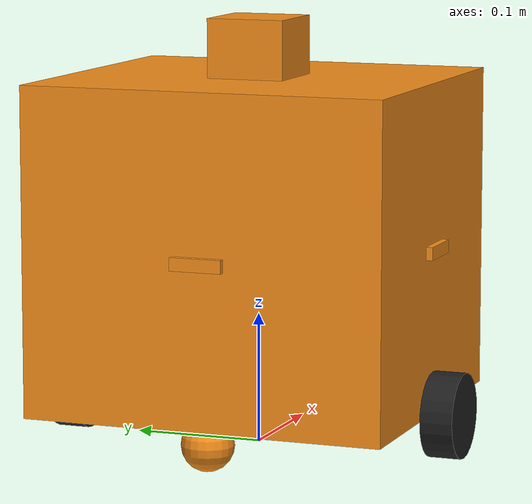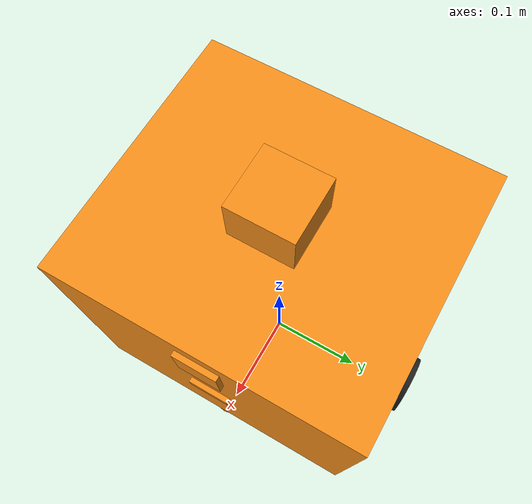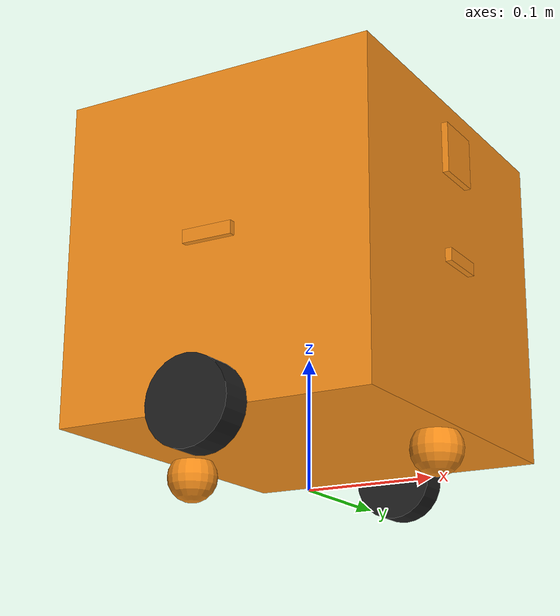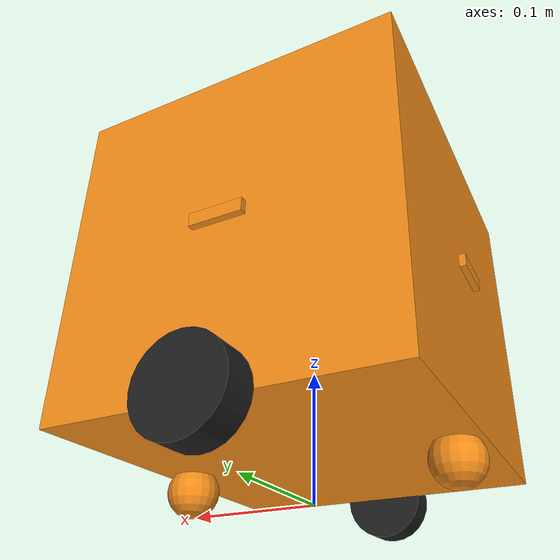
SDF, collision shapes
<sdf version='1.6'>
  <model name='piyabot'>
    <link name='base_footprint'>
      <pose frame=''>0 0 0 0 -0 0</pose>
      <inertial>
        <pose frame=''>0.00119 0 0.158357 0 -0 0</pose>
        <mass>10.5</mass>
        <inertia>
          <ixx>0.126012</ixx>
          <ixy>2.58358e-22</ixy>
          <ixz>-0.00105179</ixz>
          <iyy>0.116502</iyy>
          <iyz>1.38997e-23</iyz>
          <izz>0.108086</izz>
        </inertia>
      </inertial>
      <collision name='base_footprint_fixed_joint_lump__chassis_collision'>
        <pose frame=''>0 0 0.1575 0 -0 0</pose>
        <geometry>
          <box>
            <size>0.25 0.28 0.25</size>
          </box>
        </geometry>
        <surface>
          <contact>
            <ode/>
          </contact>
          <friction>
            <ode/>
          </friction>
        </surface>
      </collision>
      <collision name='base_footprint_fixed_joint_lump__camera_collision_1'>
        <pose frame=''>0.125 0 0.2425 0 -0 0</pose>
        <geometry>
          <box>
            <size>0.01 0.04 0.04</size>
          </box>
        </geometry>
        <surface>
          <contact>
            <ode/>
          </contact>
          <friction>
            <ode/>
          </friction>
        </surface>
      </collision>
      <collision name='base_footprint_fixed_joint_lump__caster_back_wheel_collision_2'>
        <pose frame=''>-0.105 0 0.02 0 -0 0</pose>
        <geometry>
          <sphere>
            <radius>0.02</radius>
          </sphere>
        </geometry>
        <surface>
          <contact>
            <ode/>
          </contact>
          <friction>
            <ode>
              <mu>0</mu>
              <mu2>0</mu2>
            </ode>
          </friction>
        </surface>
      </collision>
      <collision name='base_footprint_fixed_joint_lump__caster_front_wheel_collision_3'>
        <pose frame=''>0.105 0 0.02 0 -0 0</pose>
        <geometry>
          <sphere>
            <radius>0.02</radius>
          </sphere>
        </geometry>
        <surface>
          <contact>
            <ode/>
          </contact>
          <friction>
            <ode>
              <mu>0</mu>
              <mu2>0</mu2>
            </ode>
          </friction>
        </surface>
      </collision>
      <collision name='base_footprint_fixed_joint_lump__rplidar_collision_4'>
        <pose frame=''>0 0 0.2975 0 -0 0</pose>
        <geometry>
          <box>
            <size>0.06 0.06 0.06</size>
          </box>
        </geometry>
        <surface>
          <contact>
            <ode/>
          </contact>
          <friction>
            <ode/>
          </friction>
        </surface>
      </collision>
      <collision name='base_footprint_fixed_joint_lump__base_sonar_back_collision_5'>
        <pose frame=''>-0.125 0 0.1575 0 -0 -3.14159</pose>
        <geometry>
          <box>
            <size>0.01 0.04 0.01</size>
          </box>
        </geometry>
        <surface>
          <contact>
            <ode/>
          </contact>
          <friction>
            <ode/>
          </friction>
        </surface>
      </collision>
      <collision name='base_footprint_fixed_joint_lump__base_sonar_front_collision_6'>
        <pose frame=''>0.125 0 0.1575 0 -0 0</pose>
        <geometry>
          <box>
            <size>0.01 0.04 0.01</size>
          </box>
        </geometry>
        <surface>
          <contact>
            <ode/>
          </contact>
          <friction>
            <ode/>
          </friction>
        </surface>
      </collision>
      <collision name='base_footprint_fixed_joint_lump__base_sonar_left_collision_7'>
        <pose frame=''>0 0.14 0.1575 0 -0 1.5708</pose>
        <geometry>
          <box>
            <size>0.01 0.04 0.01</size>
          </box>
        </geometry>
        <surface>
          <contact>
            <ode/>
          </contact>
          <friction>
            <ode/>
          </friction>
        </surface>
      </collision>
      <collision name='base_footprint_fixed_joint_lump__base_sonar_right_collision_8'>
        <pose frame=''>0 -0.14 0.1575 0 0 -1.5708</pose>
        <geometry>
          <box>
            <size>0.01 0.04 0.01</size>
          </box>
        </geometry>
        <surface>
          <contact>
            <ode/>
          </contact>
          <friction>
            <ode/>
          </friction>
        </surface>
      </collision>
      <visual name='base_footprint_fixed_joint_lump__chassis_visual'>
        <pose frame=''>0 0 0.1575 0 -0 0</pose>
        <geometry>
          <box>
            <size>0.25 0.28 0.25</size>
          </box>
        </geometry>
        <material>
          <script>
            <name>Gazebo/Orange</name>
            <uri>file://media/materials/scripts/gazebo.material</uri>
          </script>
        </material>
      </visual>
      <visual name='base_footprint_fixed_joint_lump__camera_visual_1'>
        <pose frame=''>0.125 0 0.2425 0 -0 0</pose>
        <geometry>
          <box>
            <size>0.01 0.04 0.04</size>
          </box>
        </geometry>
        <material>
          <script>
            <name>Gazebo/Grey</name>
            <uri>file://media/materials/scripts/gazebo.material</uri>
          </script>
        </material>
      </visual>
      <visual name='base_footprint_fixed_joint_lump__caster_back_wheel_visual_2'>
        <pose frame=''>-0.105 0 0.02 0 -0 0</pose>
        <geometry>
          <sphere>
            <radius>0.02</radius>
          </sphere>
        </geometry>
        <material>
          <script>
            <name>Gazebo/Red</name>
            <uri>file://media/materials/scripts/gazebo.material</uri>
          </script>
        </material>
      </visual>
      <visual name='base_footprint_fixed_joint_lump__caster_front_wheel_visual_3'>
        <pose frame=''>0.105 0 0.02 0 -0 0</pose>
        <geometry>
          <sphere>
            <radius>0.02</radius>
          </sphere>
        </geometry>
        <material>
          <script>
            <name>Gazebo/Red</name>
            <uri>file://media/materials/scripts/gazebo.material</uri>
          </script>
        </material>
      </visual>
      <visual name='base_footprint_fixed_joint_lump__rplidar_visual_4'>
        <pose frame=''>0 0 0.2975 0 -0 -3.14159</pose>
        <geometry>
          <mesh>
            <scale>0.001 0.001 0.001</scale>
            <uri>model://bot_description/meshes/sensors/lds.stl</uri>
          </mesh>
        </geometry>
        <material>
          <script>
            <name>Gazebo/FlatBlack</name>
            <uri>file://media/materials/scripts/gazebo.material</uri>
          </script>
        </material>
      </visual>
      <visual name='base_footprint_fixed_joint_lump__base_sonar_back_visual_5'>
        <pose frame=''>-0.115 0.0225 0.1475 1.5708 -0 -1.5708</pose>
        <geometry>
          <mesh>
            <scale>0.001 0.001 0.001</scale>
            <uri>model://bot_description/meshes/sensors/HC-SR04.stl</uri>
          </mesh>
        </geometry>
        <material>
          <script>
            <uri>__default__</uri>
            <name>__default__</name>
          </script>
        </material>
      </visual>
      <visual name='base_footprint_fixed_joint_lump__base_sonar_front_visual_6'>
        <pose frame=''>0.115 -0.0225 0.1475 1.5708 -0 1.5708</pose>
        <geometry>
          <mesh>
            <scale>0.001 0.001 0.001</scale>
            <uri>model://bot_description/meshes/sensors/HC-SR04.stl</uri>
          </mesh>
        </geometry>
        <material>
          <script>
            <uri>__default__</uri>
            <name>__default__</name>
          </script>
        </material>
      </visual>
      <visual name='base_footprint_fixed_joint_lump__base_sonar_left_visual_7'>
        <pose frame=''>0.0225 0.13 0.1475 1.5708 -0 3.14159</pose>
        <geometry>
          <mesh>
            <scale>0.001 0.001 0.001</scale>
            <uri>model://bot_description/meshes/sensors/HC-SR04.stl</uri>
          </mesh>
        </geometry>
        <material>
          <script>
            <uri>__default__</uri>
            <name>__default__</name>
          </script>
        </material>
      </visual>
      <visual name='base_footprint_fixed_joint_lump__base_sonar_right_visual_8'>
        <pose frame=''>-0.0225 -0.13 0.1475 1.5708 -0 0</pose>
        <geometry>
          <mesh>
            <scale>0.001 0.001 0.001</scale>
            <uri>model://bot_description/meshes/sensors/HC-SR04.stl</uri>
          </mesh>
        </geometry>
        <material>
          <script>
            <uri>__default__</uri>
            <name>__default__</name>
          </script>
        </material>
      </visual>
      <velocity_decay/>
      <sensor name='gripper_contact_sensor' type='contact'>
        <always_on>1</always_on>
        <update_rate>30</update_rate>
        <contact>
          <collision>base_footprint_collision_chassis</collision>
          <topic>__default_topic__</topic>
        </contact>
        <plugin name='chassis_bumper' filename='libgazebo_ros_bumper.so'>
          <bumperTopicName>sensor/contact_sensor</bumperTopicName>
          <frameName>chassis_bumper</frameName>
          <alwayson>1</alwayson>
          <updaterate>30.0</updaterate>
        </plugin>
        <pose frame=''>0 0 0.0325 0 -0 0</pose>
      </sensor>
      <velocity_decay/>
      <sensor name='camera1' type='camera'>
        <update_rate>30</update_rate>
        <camera name='head'>
          <horizontal_fov>1.39626</horizontal_fov>
          <image>
            <width>800</width>
            <height>800</height>
            <format>R8G8B8</format>
          </image>
          <clip>
            <near>0.02</near>
            <far>300</far>
          </clip>
        </camera>
        <plugin name='camera_controller' filename='libgazebo_ros_camera.so'>
          <alwaysOn>1</alwaysOn>
          <updateRate>0.0</updateRate>
          <cameraName>camera1</cameraName>
          <imageTopicName>image_raw</imageTopicName>
          <cameraInfoTopicName>camera_info</cameraInfoTopicName>
          <frameName>camera_link</frameName>
          <hackBaseline>0.07</hackBaseline>
          <distortionK1>0.0</distortionK1>
          <distortionK2>0.0</distortionK2>
          <distortionK3>0.0</distortionK3>
          <distortionT1>0.0</distortionT1>
          <distortionT2>0.0</distortionT2>
        </plugin>
        <pose frame=''>0.125 0 0.2425 0 -0 0</pose>
      </sensor>
      <velocity_decay/>
      <velocity_decay/>
      <velocity_decay/>
      <sensor name='lds_lfcd_sensor' type='ray'>
        <visualize>0</visualize>
        <update_rate>5</update_rate>
        <ray>
          <scan>
            <horizontal>
              <samples>360</samples>
              <resolution>1</resolution>
              <min_angle>0</min_angle>
              <max_angle>6.28319</max_angle>
            </horizontal>
          </scan>
          <range>
            <min>0.12</min>
            <max>3.5</max>
            <resolution>0.015</resolution>
          </range>
          <noise>
            <type>gaussian</type>
            <mean>0</mean>
            <stddev>0.01</stddev>
          </noise>
        </ray>
        <plugin name='gazebo_ros_lds_lfcd_controller' filename='libgazebo_ros_laser.so'>
          <topicName>scan</topicName>
          <frameName>rplidar</frameName>
        </plugin>
        <pose frame=''>0 0 0.2975 0 -0 0</pose>
      </sensor>
      <velocity_decay/>
      <sensor name='TeraRanger' type='ray'>
        <visualize>0</visualize>
        <update_rate>50</update_rate>
        <ray>
          <scan>
            <horizontal>
              <samples>10</samples>
              <resolution>1</resolution>
              <min_angle>-0.14835</min_angle>
              <max_angle>0.14835</max_angle>
            </horizontal>
            <vertical>
              <samples>10</samples>
              <resolution>1</resolution>
              <min_angle>-0.14835</min_angle>
              <max_angle>0.14835</max_angle>
            </vertical>
          </scan>
          <range>
            <min>0.01</min>
            <max>2</max>
            <resolution>0.02</resolution>
          </range>
        </ray>
        <plugin name='gazebo_ros_range' filename='libgazebo_ros_range.so'>
          <gaussianNoise>0.005</gaussianNoise>
          <alwaysOn>1</alwaysOn>
          <updateRate>50</updateRate>
          <topicName>sensor/sonar_back</topicName>
          <frameName>base_sonar_back</frameName>
          <radiation>SONAR</radiation>
          <fov>0.2967</fov>
        </plugin>
        <pose frame=''>-0.125 0 0.1575 0 -0 -3.14159</pose>
      </sensor>
      <velocity_decay/>
      <sensor name='TeraRanger' type='ray'>
        <visualize>0</visualize>
        <update_rate>50</update_rate>
        <ray>
          <scan>
            <horizontal>
              <samples>10</samples>
              <resolution>1</resolution>
              <min_angle>-0.14835</min_angle>
              <max_angle>0.14835</max_angle>
            </horizontal>
            <vertical>
              <samples>10</samples>
              <resolution>1</resolution>
              <min_angle>-0.14835</min_angle>
              <max_angle>0.14835</max_angle>
            </vertical>
          </scan>
          <range>
            <min>0.01</min>
            <max>2</max>
            <resolution>0.02</resolution>
          </range>
        </ray>
        <plugin name='gazebo_ros_range' filename='libgazebo_ros_range.so'>
          <gaussianNoise>0.005</gaussianNoise>
          <alwaysOn>1</alwaysOn>
          <updateRate>50</updateRate>
          <topicName>sensor/sonar_front</topicName>
          <frameName>base_sonar_front</frameName>
          <radiation>SONAR</radiation>
          <fov>0.2967</fov>
        </plugin>
        <pose frame=''>0.125 0 0.1575 0 -0 0</pose>
      </sensor>
      <velocity_decay/>
      <sensor name='TeraRanger' type='ray'>
        <visualize>0</visualize>
        <update_rate>50</update_rate>
        <ray>
          <scan>
            <horizontal>
              <samples>10</samples>
              <resolution>1</resolution>
              <min_angle>-0.14835</min_angle>
              <max_angle>0.14835</max_angle>
            </horizontal>
            <vertical>
              <samples>10</samples>
              <resolution>1</resolution>
              <min_angle>-0.14835</min_angle>
              <max_angle>0.14835</max_angle>
            </vertical>
          </scan>
          <range>
            <min>0.01</min>
            <max>2</max>
            <resolution>0.02</resolution>
          </range>
        </ray>
        <plugin name='gazebo_ros_range' filename='libgazebo_ros_range.so'>
          <gaussianNoise>0.005</gaussianNoise>
          <alwaysOn>1</alwaysOn>
          <updateRate>50</updateRate>
          <topicName>sensor/sonar_left</topicName>
          <frameName>base_sonar_left</frameName>
          <radiation>SONAR</radiation>
          <fov>0.2967</fov>
        </plugin>
        <pose frame=''>0 0.14 0.1575 0 -0 1.5708</pose>
      </sensor>
      <velocity_decay/>
      <sensor name='TeraRanger' type='ray'>
        <visualize>0</visualize>
        <update_rate>50</update_rate>
        <ray>
          <scan>
            <horizontal>
              <samples>10</samples>
              <resolution>1</resolution>
              <min_angle>-0.14835</min_angle>
              <max_angle>0.14835</max_angle>
            </horizontal>
            <vertical>
              <samples>10</samples>
              <resolution>1</resolution>
              <min_angle>-0.14835</min_angle>
              <max_angle>0.14835</max_angle>
            </vertical>
          </scan>
          <range>
            <min>0.01</min>
            <max>2</max>
            <resolution>0.02</resolution>
          </range>
        </ray>
        <plugin name='gazebo_ros_range' filename='libgazebo_ros_range.so'>
          <gaussianNoise>0.005</gaussianNoise>
          <alwaysOn>1</alwaysOn>
          <updateRate>50</updateRate>
          <topicName>sensor/sonar_right</topicName>
          <frameName>base_sonar_right</frameName>
          <radiation>SONAR</radiation>
          <fov>0.2967</fov>
        </plugin>
        <pose frame=''>0 -0.14 0.1575 0 0 -1.5708</pose>
      </sensor>
      <gravity>1</gravity>
      <velocity_decay/>
      <sensor name='imu' type='imu'>
        <always_on>1</always_on>
        <visualize>0</visualize>
        <pose frame=''>0 0 0 0 -0 0</pose>
      </sensor>
    </link>
    <link name='left_wheel'>
      <pose frame=''>0 -0.1525 0.0325 0 -0 0</pose>
      <inertial>
        <pose frame=''>0 0 0 1.57079 1.57079 -3.14159</pose>
        <mass>0.2</mass>
        <inertia>
          <ixx>6.32292e-05</ixx>
          <ixy>0</ixy>
          <ixz>0</ixz>
          <iyy>6.32292e-05</iyy>
          <iyz>0</iyz>
          <izz>0.000105625</izz>
        </inertia>
      </inertial>
      <collision name='left_wheel_collision'>
        <pose frame=''>0 0 0 3.14159 1.57079 -1.57079</pose>
        <geometry>
          <cylinder>
            <length>0.025</length>
            <radius>0.0325</radius>
          </cylinder>
        </geometry>
        <surface>
          <contact>
            <ode>
              <kp>1e+07</kp>
              <kd>1</kd>
            </ode>
          </contact>
          <friction>
            <ode>
              <mu>1</mu>
              <mu2>1</mu2>
              <fdir1>1 0 0</fdir1>
            </ode>
          </friction>
        </surface>
      </collision>
      <visual name='left_wheel_visual'>
        <pose frame=''>0 0 0 3.14159 1.57079 -1.57079</pose>
        <geometry>
          <cylinder>
            <length>0.025</length>
            <radius>0.0325</radius>
          </cylinder>
        </geometry>
        <material>
          <script>
            <name>Gazebo/Black</name>
            <uri>file://media/materials/scripts/gazebo.material</uri>
          </script>
        </material>
      </visual>
      <gravity>1</gravity>
      <velocity_decay/>
    </link>
    <joint name='left_wheel_hinge' type='revolute'>
      <child>left_wheel</child>
      <parent>base_footprint</parent>
      <axis>
        <xyz>0 1 0</xyz>
        <limit>
          <lower>-1e+16</lower>
          <upper>1e+16</upper>
        </limit>
        <dynamics>
          <spring_reference>0</spring_reference>
          <spring_stiffness>0</spring_stiffness>
        </dynamics>
        <use_parent_model_frame>1</use_parent_model_frame>
      </axis>
    </joint>
    <link name='right_wheel'>
      <pose frame=''>0 0.1525 0.0325 0 -0 0</pose>
      <inertial>
        <pose frame=''>0 0 0 1.57079 1.57079 -3.14159</pose>
        <mass>0.2</mass>
        <inertia>
          <ixx>6.32292e-05</ixx>
          <ixy>0</ixy>
          <ixz>0</ixz>
          <iyy>6.32292e-05</iyy>
          <iyz>0</iyz>
          <izz>0.000105625</izz>
        </inertia>
      </inertial>
      <collision name='right_wheel_collision'>
        <pose frame=''>0 0 0 3.14159 1.57079 -1.57079</pose>
        <geometry>
          <cylinder>
            <length>0.025</length>
            <radius>0.0325</radius>
          </cylinder>
        </geometry>
        <surface>
          <contact>
            <ode>
              <kp>1e+07</kp>
              <kd>1</kd>
            </ode>
          </contact>
          <friction>
            <ode>
              <mu>1</mu>
              <mu2>1</mu2>
              <fdir1>1 0 0</fdir1>
            </ode>
          </friction>
        </surface>
      </collision>
      <visual name='right_wheel_visual'>
        <pose frame=''>0 0 0 3.14159 1.57079 -1.57079</pose>
        <geometry>
          <cylinder>
            <length>0.025</length>
            <radius>0.0325</radius>
          </cylinder>
        </geometry>
        <material>
          <script>
            <name>Gazebo/Black</name>
            <uri>file://media/materials/scripts/gazebo.material</uri>
          </script>
        </material>
      </visual>
      <gravity>1</gravity>
      <velocity_decay/>
    </link>
    <joint name='right_wheel_hinge' type='revolute'>
      <child>right_wheel</child>
      <parent>base_footprint</parent>
      <axis>
        <xyz>0 1 0</xyz>
        <limit>
          <lower>-1e+16</lower>
          <upper>1e+16</upper>
        </limit>
        <dynamics>
          <spring_reference>0</spring_reference>
          <spring_stiffness>0</spring_stiffness>
        </dynamics>
        <use_parent_model_frame>1</use_parent_model_frame>
      </axis>
    </joint>
    <plugin name='gazebo_ros_control' filename='libgazebo_ros_control.so'>
      <robotNamespace>/piyabot</robotNamespace>
    </plugin>
    <plugin name='differential_drive_controller' filename='libgazebo_ros_diff_drive.so'>
      <alwaysOn>1</alwaysOn>
      <updateRate>100</updateRate>
      <leftJoint>left_wheel_hinge</leftJoint>
      <rightJoint>right_wheel_hinge</rightJoint>
      <wheelSeparation>0.305</wheelSeparation>
      <wheelDiameter>0.065</wheelDiameter>
      <wheelAcceleration>1</wheelAcceleration>
      <wheelTorque>20</wheelTorque>
      <rosDebugLevel>na</rosDebugLevel>
      <publishWheelTF>0</publishWheelTF>
      <publishTf>1</publishTf>
      <publishOdomTF>1</publishOdomTF>
      <publishWheelJointState>1</publishWheelJointState>
      <odometrySource>world</odometrySource>
      <commandTopic>cmd_vel</commandTopic>
      <odometryTopic>odom_diffdrive</odometryTopic>
      <odometryFrame>odom</odometryFrame>
      <robotBaseFrame>base_footprint</robotBaseFrame>
    </plugin>
    <plugin name='ground_truth' filename='libgazebo_ros_p3d.so'>
      <frameName>map</frameName>
      <topicName>odom</topicName>
      <updateRate>30.0</updateRate>
      <bodyName>base_footprint</bodyName>
      <xyzOffset>0 0 -0.0325</xyzOffset>
      <rpyOffset>0 -0 0</rpyOffset>
    </plugin>
    <static>0</static>
    <plugin name='imu_plugin' filename='libgazebo_ros_imu.so'>
      <alwaysOn>1</alwaysOn>
      <topicName>imu</topicName>
      <serviceName>imu_service</serviceName>
      <gaussianNoise>0.0</gaussianNoise>
      <updateRate>200</updateRate>
      <imu>
        <noise>
          <type>gaussian</type>
          <rate>
            <mean>0.0</mean>
            <stddev>2e-4</stddev>
            <bias_mean>0.0000075</bias_mean>
            <bias_stddev>0.0000008</bias_stddev>
          </rate>
          <accel>
            <mean>0.0</mean>
            <stddev>1.7e-2</stddev>
            <bias_mean>0.1</bias_mean>
            <bias_stddev>0.001</bias_stddev>
          </accel>
        </noise>
      </imu>
      <bodyName>base_footprint</bodyName>
      <frameName>base_footprint</frameName>
      <xyzOffset>0 0 0</xyzOffset>
      <rpyOffset>0 -0 0</rpyOffset>
    </plugin>
  </model>
</sdf>
